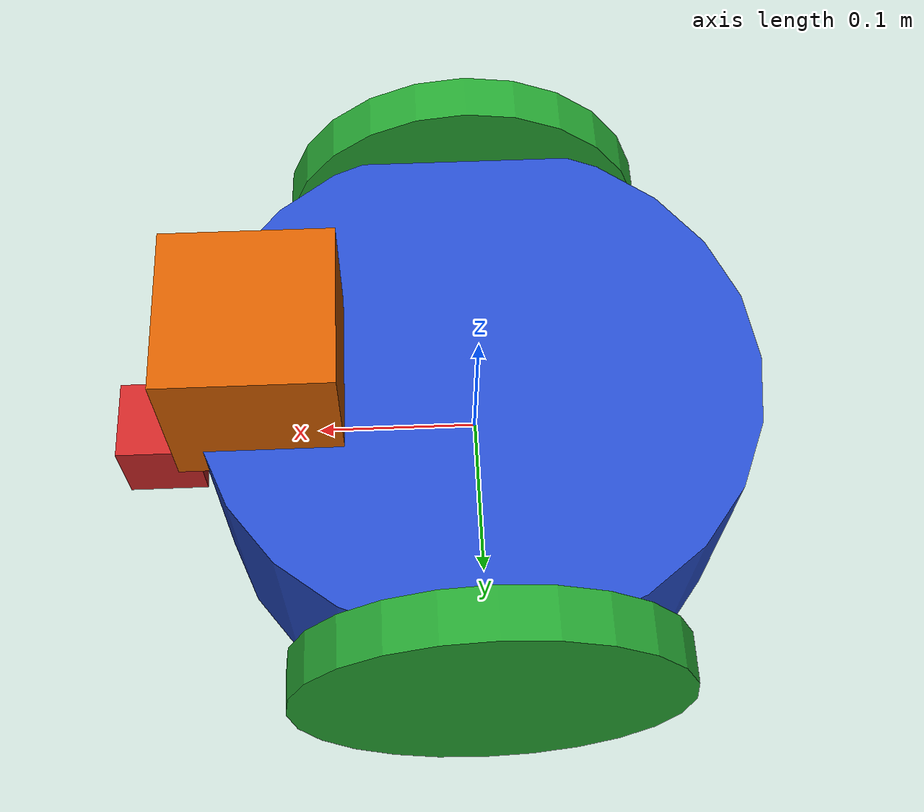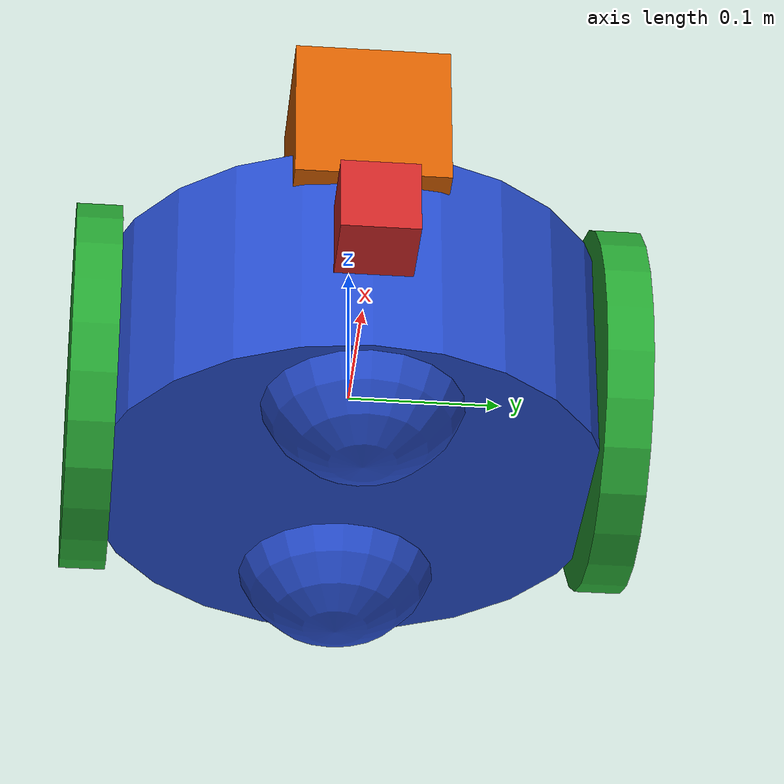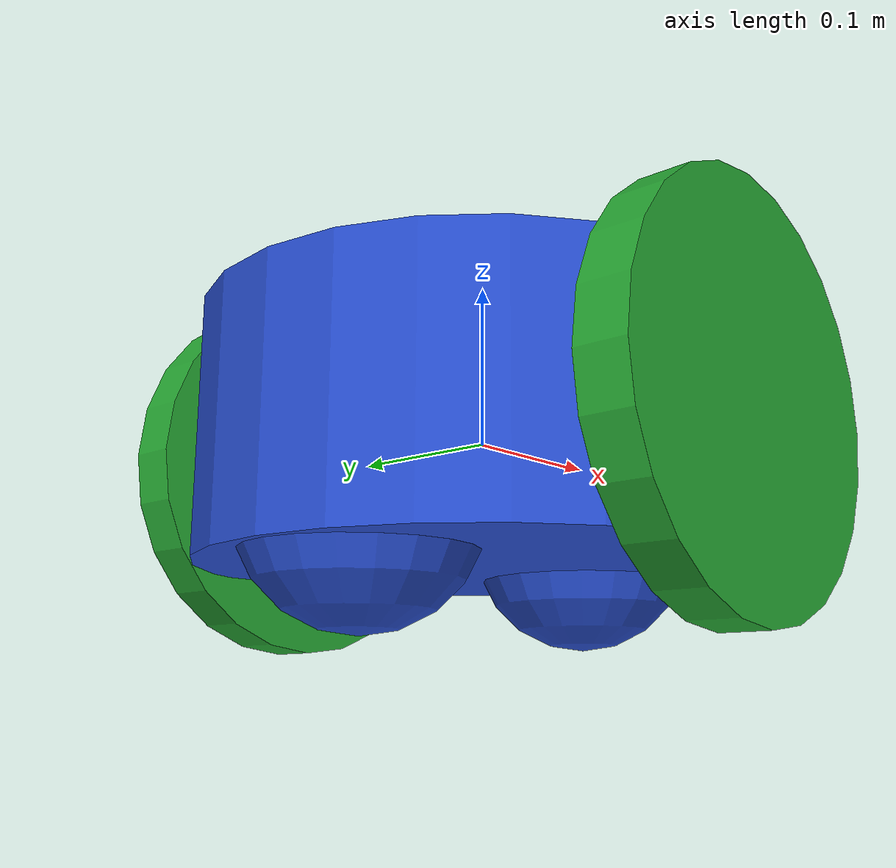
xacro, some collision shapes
<?xml version='1.0'?>

<robot name="my_robot" xmlns:xacro="http://www.ros.org/wiki/xacro">
  <xacro:include filename="$(find my_robot)/urdf/my_robot.gazebo" />
  <link name="robot_footprint"></link>

  <joint name="robot_footprint_joint" type="fixed">
    <origin xyz="0 0 0" rpy="0 0 0" />
    <parent link="robot_footprint"/>
    <child link="chassis" />
  </joint>

  <link name='chassis'>
    <pose>0 0 0.1 0 0 0</pose>

    <inertial>
      <mass value="15.0"/>
      <origin xyz="0.0 0 0" rpy=" 0 0 0"/>
      <inertia
          ixx="0.1" ixy="0" ixz="0"
          iyy="0.1" iyz="0"
          izz="0.1"
      />
    </inertial>

    <collision name='collision'>
      <origin xyz="0 0 0" rpy=" 0 0 0"/>
      <geometry>
        <cylinder length="0.15" radius="0.17"/>
      </geometry>
    </collision>

    <visual name='chassis_visual'>
      <origin xyz="0 0 0" rpy=" 0 0 0"/>
      <geometry>
        <cylinder length="0.15" radius="0.17"/>
      </geometry>
    </visual>

    <collision name='back_caster_collision'>
      <origin xyz="-0.10 0 -0.05" rpy=" 0 0 0"/>
      <geometry>
        <sphere radius="0.0699"/>
      </geometry>
    </collision>

    <visual name='back_caster_visual'>
      <origin xyz="-0.10 0 -0.05" rpy=" 0 0 0"/>
      <geometry>
        <sphere radius="0.07"/>
      </geometry>
    </visual>

    <collision name='front_caster_collision'>
      <origin xyz="0.10 0 -0.05" rpy=" 0 0 0"/>
      <geometry>
        <sphere radius="0.0699"/>
      </geometry>
    </collision>

    <visual name='front_caster_visual'>
      <origin xyz="0.10 0 -0.05" rpy=" 0 0 0"/>
      <geometry>
        <sphere radius="0.07"/>
      </geometry>
    </visual>

  </link>

  <link name='left_wheel'>
    <inertial>
      <mass value="5.0"/>
      <origin xyz="0.0 0 0" rpy=" 0 1.5707 1.5707"/>
      <inertia
          ixx="0.1" ixy="0" ixz="0"
          iyy="0.1" iyz="0"
          izz="0.1"
      />
    </inertial>

    <collision name='collision'>
      <origin xyz="0 0 0" rpy=" 0 1.5707 1.5707"/>
      <geometry>
        <cylinder length="0.03" radius="0.12"/>
      </geometry>
    </collision>

    <visual name='chassis_visual'>
      <origin xyz="0 0 0" rpy=" 0 1.5707 1.5707"/>
      <geometry>
        <cylinder length="0.03" radius="0.12"/>
      </geometry>
    </visual>

  </link>

  <link name='right_wheel'>
    <inertial>
      <mass value="5.0"/>
      <origin xyz="0.0 0 0" rpy=" 0 1.5707 1.5707"/>
      <inertia
          ixx="0.1" ixy="0" ixz="0"
          iyy="0.1" iyz="0"
          izz="0.1"
      />
    </inertial>

    <collision name='collision'>
      <origin xyz="0 0 0" rpy=" 0 1.5707 1.5707"/>
      <geometry>
        <cylinder length="0.03" radius="0.12"/>
      </geometry>
    </collision>

    <visual name='chassis_visual'>
      <origin xyz="0 0 0" rpy=" 0 1.5707 1.5707"/>
      <geometry>
        <cylinder length="0.03" radius="0.12"/>
      </geometry>
    </visual>

  </link>

  <link name='camera'>
    <inertial>
      <mass value="0.1"/>
      <origin xyz="0 0 0" rpy=" 0 0 0"/>
      <inertia
          ixx="1e-6" ixy="0" ixz="0"
          iyy="1e-6" iyz="0"
          izz="1e-6"
      />
    </inertial>

    <collision name='collision'>
      <origin xyz="0 0 0" rpy=" 0 0 0"/>
      <geometry>
        <box size="0.05 0.05 0.05"/>
      </geometry>
    </collision>

    <visual name='camera_visual'>
      <origin xyz="0 0 0" rpy=" 0 0 0"/>
      <geometry>
        <box size="0.05 0.05 0.05"/>
      </geometry>
    </visual>

  </link>

  <link name='hokuyo'>
    <inertial>
      <mass value="1e-5"/>
      <origin xyz="0.0 0 0" rpy=" 0 0 0"/>
      <inertia
          ixx="1e-6" ixy="0" ixz="0"
          iyy="1e-6" iyz="0"
          izz="1e-6"
      />
    </inertial>

    <collision name='collision'>
      <origin xyz="0.0 0 0" rpy=" 0 0 0"/>
      <geometry>
        <box size="0.1 0.1 0.1"/>
      </geometry>
    </collision>

    <visual name='hokuyo_visual'>
      <origin xyz="0.0 0 0" rpy=" 0 0 0"/>
      <geometry>
        <mesh filename="package://my_robot/meshes/hokuyo.dae"/>
      </geometry>
    </visual>

  </link>

  <!--Joints-->
  <joint type="continuous" name="left_wheel_hinge">
    <origin xyz="0 0.17 0" rpy="0 0 0"/>
    <child link="left_wheel"/>
    <parent link="chassis"/>
    <axis xyz="0 1 0" rpy="0 0 0"/>
    <limit effort="10000" velocity="1000"/>
    <dynamics damping="1.0" friction="1.0"/>
  </joint>
  <joint type="continuous" name="right_wheel_hinge">
    <origin xyz="0 -0.17 0" rpy="0 0 0"/>
    <child link="right_wheel"/>
    <parent link="chassis"/>
    <axis xyz="0 1 0" rpy="0 0 0"/>
    <limit effort="10000" velocity="1000"/>
    <dynamics damping="1.0" friction="1.0"/>
  </joint>
  <joint type="fixed" name="camera_joint">
    <origin xyz="0.2 0 0" rpy="0 0 0"/>
    <child link="camera"/>
    <parent link="chassis"/>
    <axis xyz="0 1 0" rpy="0 0 0"/>
  </joint>
  <joint type="fixed" name="hokuyo_joint">
    <origin xyz="0.13 0 0.1" rpy="0 0 0"/>
    <child link="hokuyo"/>
    <parent link="chassis"/>
    <axis xyz="0 1 0" rpy="0 0 0"/>
  </joint>

  <gazebo reference="left_wheel">
    <material>Gazebo/Green</material>
  </gazebo>
  <gazebo reference="right_wheel">
    <material>Gazebo/Green</material>
  </gazebo>
  <gazebo reference="chassis">
    <material>Gazebo/Blue</material>
  </gazebo>
  <gazebo reference="camera">
    <material>Gazebo/Red</material>
  </gazebo>

</robot>
